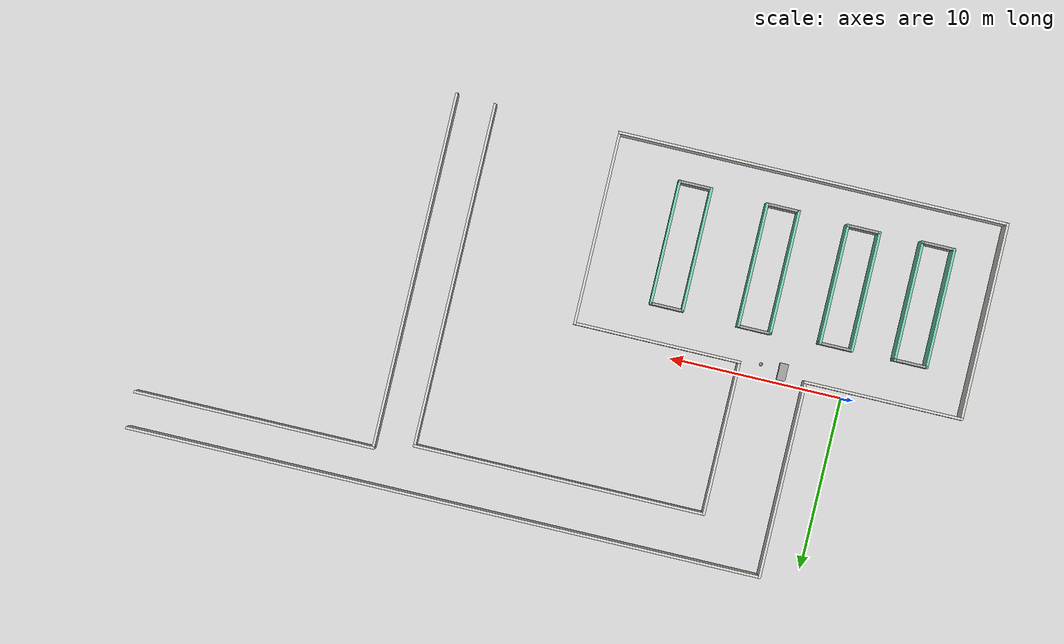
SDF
<sdf version="1.6">
 <world name="default">
  <plugin name="hello" filename="libhello.so"/>
  <light name="sun" type="directional">
   <pose>0 0 10 0 -0 0</pose>
   <diffuse>0.8 0.8 0.8 1</diffuse>
   <specular>0.2 0.2 0.2 1</specular>
   <attenuation>
    <range>1000</range>
    <constant>0.9</constant>
    <linear>0.01</linear>
    <quadratic>0.001</quadratic>
   </attenuation>
   <direction>-0.5 0.1 -0.9</direction>
   <spot><inner_angle>0</inner_angle><outer_angle>0</outer_angle><falloff>0</falloff></spot>
  </light>
  <model name="ground_plane">
   <static>1</static>
   <link name="link">
    <collision name="collision">
     <geometry><plane><normal>0 0 1</normal><size>100 100</size></plane></geometry>
     <surface>
      <contact><collide_bitmask>65535</collide_bitmask></contact>
      <friction><ode><mu>100</mu><mu2>50</mu2></ode></friction>
     </surface>
    </collision>
    <visual name="visual">
     <cast_shadows>0</cast_shadows>
     <geometry><plane><normal>0 0 1</normal><size>100 100</size></plane></geometry>
     <material>
      <script><uri>file://media/materials/scripts/gazebo.material</uri><name>Gazebo/Grey</name></script>
     </material>
    </visual>
   </link>
  </model>
  <gravity>0 0 -9.8</gravity>
  <magnetic_field>6e-06 2.3e-05 -4.2e-05</magnetic_field>
  <atmosphere type="adiabatic"/>
  <physics name="default_physics" default="0" type="ode">
   <max_step_size>0.001</max_step_size>
   <real_time_factor>1</real_time_factor>
   <real_time_update_rate>1000</real_time_update_rate>
  </physics>
  <scene><ambient>0.4 0.4 0.4 1</ambient><background>0.7 0.7 0.7 1</background><shadows>1</shadows></scene>
  <spherical_coordinates>
   <surface_model>EARTH_WGS84</surface_model>
   <latitude_deg>0</latitude_deg>
   <longitude_deg>0</longitude_deg>
   <elevation>0</elevation>
   <heading_deg>0</heading_deg>
  </spherical_coordinates>
  <model name="mybuilding">
   <pose>16.1608 -0.44654 0 0 -0 0</pose>
   <link name="Wall_0">
    <collision name="Wall_0_Collision">
     <geometry><box><size>7 0.15 2.5</size></box></geometry>
     <pose>0 0 1.25 0 -0 0</pose>
    </collision>
    <visual name="Wall_0_Visual">
     <pose>0 0 1.25 0 -0 0</pose>
     <geometry><box><size>7 0.15 2.5</size></box></geometry>
     <material>
      <script><uri>file://media/materials/scripts/gazebo.material</uri><name>Gazebo/Grey</name></script>
      <ambient>0.435294 0.796078 0.67451 1</ambient>
     </material>
     <meta><layer>0</layer></meta>
    </visual>
    <pose>-20.3708 -5.82846 0 0 -0 -1.5708</pose>
   </link>
   <link name="Wall_1">
    <collision name="Wall_1_Collision">
     <geometry><box><size>2 0.15 2.5</size></box></geometry>
     <pose>0 0 1.25 0 -0 0</pose>
    </collision>
    <visual name="Wall_1_Visual">
     <pose>0 0 1.25 0 -0 0</pose>
     <geometry><box><size>2 0.15 2.5</size></box></geometry>
     <material>
      <script><uri>file://media/materials/scripts/gazebo.material</uri><name>Gazebo/Grey</name></script>
      <ambient>1 1 1 1</ambient>
     </material>
     <meta><layer>0</layer></meta>
    </visual>
    <pose>-19.4458 -9.25346 0 0 -0 0</pose>
   </link>
   <link name="Wall_10">
    <collision name="Wall_10_Collision">
     <geometry><box><size>7.25 0.15 2.5</size></box></geometry>
     <pose>0 0 1.25 0 -0 0</pose>
    </collision>
    <visual name="Wall_10_Visual">
     <pose>0 0 1.25 0 -0 0</pose>
     <geometry><box><size>7.25 0.15 2.5</size></box></geometry>
     <material>
      <script><uri>file://media/materials/scripts/gazebo.material</uri><name>Gazebo/Grey</name></script>
      <ambient>0.435294 0.796078 0.67451 1</ambient>
     </material>
     <meta><layer>0</layer></meta>
    </visual>
    <pose>-11.3008 -5.78346 0 0 -0 -1.5708</pose>
   </link>
   <link name="Wall_11">
    <collision name="Wall_11_Collision">
     <geometry><box><size>2 0.15 2.5</size></box></geometry>
     <pose>0 0 1.25 0 -0 0</pose>
    </collision>
    <visual name="Wall_11_Visual">
     <pose>0 0 1.25 0 -0 0</pose>
     <geometry><box><size>2 0.15 2.5</size></box></geometry>
     <material>
      <script><uri>file://media/materials/scripts/gazebo.material</uri><name>Gazebo/Grey</name></script>
      <ambient>1 1 1 1</ambient>
     </material>
     <meta><layer>0</layer></meta>
    </visual>
    <pose>-10.3758 -9.33346 0 0 -0 0</pose>
   </link>
   <link name="Wall_12">
    <collision name="Wall_12_Collision">
     <geometry><box><size>7.25 0.15 2.5</size></box></geometry>
     <pose>0 0 1.25 0 -0 0</pose>
    </collision>
    <visual name="Wall_12_Visual">
     <pose>0 0 1.25 0 -0 0</pose>
     <geometry><box><size>7.25 0.15 2.5</size></box></geometry>
     <material>
      <script><uri>file://media/materials/scripts/gazebo.material</uri><name>Gazebo/Grey</name></script>
      <ambient>0.435294 0.796078 0.67451 1</ambient>
     </material>
     <meta><layer>0</layer></meta>
    </visual>
    <pose>-9.45077 -5.78346 0 0 -0 1.5708</pose>
   </link>
   <link name="Wall_13">
    <collision name="Wall_13_Collision">
     <geometry><box><size>2 0.15 2.5</size></box></geometry>
     <pose>0 0 1.25 0 -0 0</pose>
    </collision>
    <visual name="Wall_13_Visual">
     <pose>0 0 1.25 0 -0 0</pose>
     <geometry><box><size>2 0.15 2.5</size></box></geometry>
     <material>
      <script><uri>file://media/materials/scripts/gazebo.material</uri><name>Gazebo/Grey</name></script>
      <ambient>1 1 1 1</ambient>
     </material>
     <meta><layer>0</layer></meta>
    </visual>
    <pose>-10.3758 -2.23346 0 0 -0 3.14159</pose>
   </link>
   <link name="Wall_15">
    <collision name="Wall_15_Collision">
     <geometry><box><size>7.25 0.15 2.5</size></box></geometry>
     <pose>0 0 1.25 0 -0 0</pose>
    </collision>
    <visual name="Wall_15_Visual">
     <pose>0 0 1.25 0 -0 0</pose>
     <geometry><box><size>7.25 0.15 2.5</size></box></geometry>
     <material>
      <script><uri>file://media/materials/scripts/gazebo.material</uri><name>Gazebo/Grey</name></script>
      <ambient>0.435294 0.796078 0.67451 1</ambient>
     </material>
     <meta><layer>0</layer></meta>
    </visual>
    <pose>-6.16902 -5.89376 0 0 -0 -1.5708</pose>
   </link>
   <link name="Wall_16">
    <collision name="Wall_16_Collision">
     <geometry><box><size>2 0.15 2.5</size></box></geometry>
     <pose>0 0 1.25 0 -0 0</pose>
    </collision>
    <visual name="Wall_16_Visual">
     <pose>0 0 1.25 0 -0 0</pose>
     <geometry><box><size>2 0.15 2.5</size></box></geometry>
     <material>
      <script><uri>file://media/materials/scripts/gazebo.material</uri><name>Gazebo/Grey</name></script>
      <ambient>1 1 1 1</ambient>
     </material>
     <meta><layer>0</layer></meta>
    </visual>
    <pose>-5.24402 -9.44376 0 0 -0 0</pose>
   </link>
   <link name="Wall_17">
    <collision name="Wall_17_Collision">
     <geometry><box><size>7.25 0.15 2.5</size></box></geometry>
     <pose>0 0 1.25 0 -0 0</pose>
    </collision>
    <visual name="Wall_17_Visual">
     <pose>0 0 1.25 0 -0 0</pose>
     <geometry><box><size>7.25 0.15 2.5</size></box></geometry>
     <material>
      <script><uri>file://media/materials/scripts/gazebo.material</uri><name>Gazebo/Grey</name></script>
      <ambient>0.435294 0.796078 0.67451 1</ambient>
     </material>
     <meta><layer>0</layer></meta>
    </visual>
    <pose>-4.31902 -5.89376 0 0 -0 1.5708</pose>
   </link>
   <link name="Wall_18">
    <collision name="Wall_18_Collision">
     <geometry><box><size>2 0.15 2.5</size></box></geometry>
     <pose>0 0 1.25 0 -0 0</pose>
    </collision>
    <visual name="Wall_18_Visual">
     <pose>0 0 1.25 0 -0 0</pose>
     <geometry><box><size>2 0.15 2.5</size></box></geometry>
     <material>
      <script><uri>file://media/materials/scripts/gazebo.material</uri><name>Gazebo/Grey</name></script>
      <ambient>1 1 1 1</ambient>
     </material>
     <meta><layer>0</layer></meta>
    </visual>
    <pose>-5.24402 -2.34376 0 0 -0 3.14159</pose>
   </link>
   <link name="Wall_2">
    <collision name="Wall_2_Collision">
     <geometry><box><size>7 0.15 2.5</size></box></geometry>
     <pose>0 0 1.25 0 -0 0</pose>
    </collision>
    <visual name="Wall_2_Visual">
     <pose>0 0 1.25 0 -0 0</pose>
     <geometry><box><size>7 0.15 2.5</size></box></geometry>
     <material>
      <script><uri>file://media/materials/scripts/gazebo.material</uri><name>Gazebo/Grey</name></script>
      <ambient>0.435294 0.796078 0.67451 1</ambient>
     </material>
     <meta><layer>0</layer></meta>
    </visual>
    <pose>-18.5208 -5.82846 0 0 -0 1.5708</pose>
   </link>
   <link name="Wall_21">
    <collision name="Wall_21_Collision">
     <geometry><box><size>9.25 0.15 2.5</size></box></geometry>
     <pose>0 0 1.25 0 -0 0</pose>
    </collision>
    <visual name="Wall_21_Visual">
     <pose>0 0 1.25 0 -0 0</pose>
     <geometry><box><size>9.25 0.15 2.5</size></box></geometry>
     <material>
      <script><uri>file://media/materials/scripts/gazebo.material</uri><name>Gazebo/CeilingTiled</name></script>
      <ambient>1 1 1 1</ambient>
     </material>
     <meta><layer>0</layer></meta>
    </visual>
    <pose>-18.4267 -0 0 0 -0 3.14159</pose>
   </link>
   <link name="Wall_23">
    <collision name="Wall_23_Collision">
     <geometry><box><size>11.5 0.15 2.5</size></box></geometry>
     <pose>0 0 1.25 0 -0 0</pose>
    </collision>
    <visual name="Wall_23_Visual">
     <pose>0 0 1.25 0 -0 0</pose>
     <geometry><box><size>11.5 0.15 2.5</size></box></geometry>
     <material>
      <script><uri>file://media/materials/scripts/gazebo.material</uri><name>Gazebo/CeilingTiled</name></script>
      <ambient>1 1 1 1</ambient>
     </material>
     <meta><layer>0</layer></meta>
    </visual>
    <pose>-22.9767 -5.675 0 0 -0 -1.5708</pose>
   </link>
   <link name="Wall_24">
    <collision name="Wall_24_Collision">
     <geometry><box><size>22.75 0.15 2.5</size></box></geometry>
     <pose>0 0 1.25 0 -0 0</pose>
    </collision>
    <visual name="Wall_24_Visual">
     <pose>0 0 1.25 0 -0 0</pose>
     <geometry><box><size>22.75 0.15 2.5</size></box></geometry>
     <material>
      <script><uri>file://media/materials/scripts/gazebo.material</uri><name>Gazebo/CeilingTiled</name></script>
      <ambient>1 1 1 1</ambient>
     </material>
     <meta><layer>0</layer></meta>
    </visual>
    <pose>-11.6767 -11.35 0 0 -0 0</pose>
   </link>
   <link name="Wall_25">
    <collision name="Wall_25_Collision">
     <geometry><box><size>11.25 0.15 2.5</size></box></geometry>
     <pose>0 0 1.25 0 -0 0</pose>
    </collision>
    <visual name="Wall_25_Visual">
     <pose>0 0 1.25 0 -0 0</pose>
     <geometry><box><size>11.25 0.15 2.5</size></box></geometry>
     <material>
      <script><uri>file://media/materials/scripts/gazebo.material</uri><name>Gazebo/CeilingTiled</name></script>
      <ambient>1 1 1 1</ambient>
     </material>
     <meta><layer>0</layer></meta>
    </visual>
    <pose>-0.376686 -5.8 0 0 -0 1.5708</pose>
   </link>
   <link name="Wall_26">
    <collision name="Wall_26_Collision">
     <geometry><box><size>9.75 0.15 2.5</size></box></geometry>
     <pose>0 0 1.25 0 -0 0</pose>
    </collision>
    <visual name="Wall_26_Visual">
     <pose>0 0 1.25 0 -0 0</pose>
     <geometry><box><size>9.75 0.15 2.5</size></box></geometry>
     <material>
      <script><uri>file://media/materials/scripts/gazebo.material</uri><name>Gazebo/CeilingTiled</name></script>
      <ambient>1 1 1 1</ambient>
     </material>
     <meta><layer>0</layer></meta>
    </visual>
    <pose>-5.17669 -0.25 0 0 -0 3.14159</pose>
   </link>
   <link name="Wall_27">
    <collision name="Wall_27_Collision">
     <geometry><box><size>9 0.15 2.5</size></box></geometry>
     <pose>0 0 1.25 0 -0 0</pose>
    </collision>
    <visual name="Wall_27_Visual">
     <pose>0 0 1.25 0 -0 0</pose>
     <geometry><box><size>9 0.15 2.5</size></box></geometry>
     <material>
      <script><uri>file://media/materials/scripts/gazebo.material</uri><name>Gazebo/CeilingTiled</name></script>
      <ambient>1 1 1 1</ambient>
     </material>
     <meta><layer>0</layer></meta>
    </visual>
    <pose>-9.97669 4.175 0 0 -0 1.5708</pose>
   </link>
   <link name="Wall_28">
    <collision name="Wall_28_Collision">
     <geometry><box><size>17 0.15 2.5</size></box></geometry>
     <pose>0 0 1.25 0 -0 0</pose>
    </collision>
    <visual name="Wall_28_Visual">
     <pose>0 0 1.25 0 -0 0</pose>
     <geometry><box><size>17 0.15 2.5</size></box></geometry>
     <material>
      <script><uri>file://media/materials/scripts/gazebo.material</uri><name>Gazebo/CeilingTiled</name></script>
      <ambient>1 1 1 1</ambient>
     </material>
     <meta><layer>0</layer></meta>
    </visual>
    <pose>-1.55169 8.6 0 0 -0 0</pose>
   </link>
   <link name="Wall_29">
    <collision name="Wall_29_Collision">
     <geometry><box><size>20 0.15 2.5</size></box></geometry>
     <pose>0 0 1.25 0 -0 0</pose>
    </collision>
    <visual name="Wall_29_Visual">
     <pose>0 0 1.25 0 -0 0</pose>
     <geometry><box><size>20 0.15 2.5</size></box></geometry>
     <material>
      <script><uri>file://media/materials/scripts/gazebo.material</uri><name>Gazebo/CeilingTiled</name></script>
      <ambient>1 1 1 1</ambient>
     </material>
     <meta><layer>0</layer></meta>
    </visual>
    <pose>6.87331 -1.325 0 0 -0 -1.5708</pose>
   </link>
   <link name="Wall_3">
    <collision name="Wall_3_Collision">
     <geometry><box><size>2 0.15 2.5</size></box></geometry>
     <pose>0 0 1.25 0 -0 0</pose>
    </collision>
    <visual name="Wall_3_Visual">
     <pose>0 0 1.25 0 -0 0</pose>
     <geometry><box><size>2 0.15 2.5</size></box></geometry>
     <material>
      <script><uri>file://media/materials/scripts/gazebo.material</uri><name>Gazebo/Grey</name></script>
      <ambient>1 1 1 1</ambient>
     </material>
     <meta><layer>0</layer></meta>
    </visual>
    <pose>-19.4458 -2.40346 0 0 -0 3.14159</pose>
   </link>
   <link name="Wall_31">
    <collision name="Wall_31_Collision">
     <geometry><box><size>11.5 0.15 2.5</size></box></geometry>
     <pose>0 0 1.25 0 -0 0</pose>
    </collision>
    <visual name="Wall_31_Visual">
     <pose>0 0 1.25 0 -0 0</pose>
     <geometry><box><size>11.5 0.15 2.5</size></box></geometry>
     <material>
      <script><uri>file://media/materials/scripts/gazebo.material</uri><name>Gazebo/CeilingTiled</name></script>
      <ambient>1 1 1 1</ambient>
     </material>
     <meta><layer>0</layer></meta>
    </visual>
    <pose>-13.8767 5.675 0 0 -0 1.5708</pose>
   </link>
   <link name="Wall_32">
    <collision name="Wall_32_Collision">
     <geometry><box><size>37 0.15 2.5</size></box></geometry>
     <pose>0 0 1.25 0 -0 0</pose>
    </collision>
    <visual name="Wall_32_Visual">
     <pose>0 0 1.25 0 -0 0</pose>
     <geometry><box><size>37 0.15 2.5</size></box></geometry>
     <material>
      <script><uri>file://media/materials/scripts/gazebo.material</uri><name>Gazebo/CeilingTiled</name></script>
      <ambient>1 1 1 1</ambient>
     </material>
     <meta><layer>0</layer></meta>
    </visual>
    <pose>4.54831 11.35 0 0 -0 0</pose>
   </link>
   <link name="Wall_34">
    <collision name="Wall_34_Collision">
     <geometry><box><size>14 0.15 2.5</size></box></geometry>
     <pose>0 0 1.25 0 -0 0</pose>
    </collision>
    <visual name="Wall_34_Visual">
     <pose>0 0 1.25 0 -0 0</pose>
     <geometry><box><size>14 0.15 2.5</size></box></geometry>
     <material>
      <script><uri>file://media/materials/scripts/gazebo.material</uri><name>Gazebo/CeilingTiled</name></script>
      <ambient>1 1 1 1</ambient>
     </material>
     <meta><layer>0</layer></meta>
    </visual>
    <pose>16.0517 9.25434 0 0 -0 3.14159</pose>
   </link>
   <link name="Wall_35">
    <collision name="Wall_35_Collision">
     <geometry><box><size>20.75 0.15 2.5</size></box></geometry>
     <pose>0 0 1.25 0 -0 0</pose>
    </collision>
    <visual name="Wall_35_Visual">
     <pose>0 0 1.25 0 -0 0</pose>
     <geometry><box><size>20.75 0.15 2.5</size></box></geometry>
     <material>
      <script><uri>file://media/materials/scripts/gazebo.material</uri><name>Gazebo/CeilingTiled</name></script>
      <ambient>1 1 1 1</ambient>
     </material>
     <meta><layer>0</layer></meta>
    </visual>
    <pose>9.12669 -1.04566 0 0 -0 -1.5708</pose>
   </link>
   <link name="Wall_5">
    <collision name="Wall_5_Collision">
     <geometry><box><size>7 0.15 2.5</size></box></geometry>
     <pose>0 0 1.25 0 -0 0</pose>
    </collision>
    <visual name="Wall_5_Visual">
     <pose>0 0 1.25 0 -0 0</pose>
     <geometry><box><size>7 0.15 2.5</size></box></geometry>
     <material>
      <script><uri>file://media/materials/scripts/gazebo.material</uri><name>Gazebo/Grey</name></script>
      <ambient>0.435294 0.796078 0.67451 1</ambient>
     </material>
     <meta><layer>0</layer></meta>
    </visual>
    <pose>-16.0308 -5.77846 0 0 -0 -1.5708</pose>
   </link>
   <link name="Wall_6">
    <collision name="Wall_6_Collision">
     <geometry><box><size>2 0.15 2.5</size></box></geometry>
     <pose>0 0 1.25 0 -0 0</pose>
    </collision>
    <visual name="Wall_6_Visual">
     <pose>0 0 1.25 0 -0 0</pose>
     <geometry><box><size>2 0.15 2.5</size></box></geometry>
     <material>
      <script><uri>file://media/materials/scripts/gazebo.material</uri><name>Gazebo/Grey</name></script>
      <ambient>1 1 1 1</ambient>
     </material>
     <meta><layer>0</layer></meta>
    </visual>
    <pose>-15.1058 -9.20346 0 0 -0 0</pose>
   </link>
   <link name="Wall_7">
    <collision name="Wall_7_Collision">
     <geometry><box><size>7 0.15 2.5</size></box></geometry>
     <pose>0 0 1.25 0 -0 0</pose>
    </collision>
    <visual name="Wall_7_Visual">
     <pose>0 0 1.25 0 -0 0</pose>
     <geometry><box><size>7 0.15 2.5</size></box></geometry>
     <material>
      <script><uri>file://media/materials/scripts/gazebo.material</uri><name>Gazebo/Grey</name></script>
      <ambient>0.435294 0.796078 0.67451 1</ambient>
     </material>
     <meta><layer>0</layer></meta>
    </visual>
    <pose>-14.1808 -5.77846 0 0 -0 1.5708</pose>
   </link>
   <link name="Wall_8">
    <collision name="Wall_8_Collision">
     <geometry><box><size>2 0.15 2.5</size></box></geometry>
     <pose>0 0 1.25 0 -0 0</pose>
    </collision>
    <visual name="Wall_8_Visual">
     <pose>0 0 1.25 0 -0 0</pose>
     <geometry><box><size>2 0.15 2.5</size></box></geometry>
     <material>
      <script><uri>file://media/materials/scripts/gazebo.material</uri><name>Gazebo/Grey</name></script>
      <ambient>1 1 1 1</ambient>
     </material>
     <meta><layer>0</layer></meta>
    </visual>
    <pose>-15.1058 -2.35346 0 0 -0 3.14159</pose>
   </link>
   <static>1</static>
  </model>
  <model name="humanoid">
   <link name="link_0">
    <inertial>
     <mass>1</mass>
     <inertia>
      <ixx>0.166667</ixx>
      <ixy>0</ixy>
      <ixz>0</ixz>
      <iyy>0.166667</iyy>
      <iyz>0</iyz>
      <izz>0.166667</izz>
     </inertia>
    </inertial>
    <pose>0 0 0.4515 0 -0 0</pose>
    <visual name="visual">
     <geometry><box><size>0.5 1 0.25</size></box></geometry>
     <material>
      <lighting>1</lighting>
      <script><uri>file://media/materials/scripts/gazebo.material</uri><name>Gazebo/Grey</name></script>
      <shader type="pixel"><normal_map>__default__</normal_map></shader>
      <ambient>0.3 0.3 0.3 1</ambient>
      <diffuse>0.7 0.7 0.7 1</diffuse>
      <specular>0.01 0.01 0.01 1</specular>
      <emissive>0 0 0 1</emissive>
     </material>
    </visual>
    <collision name="collision">
     <geometry><box><size>0.5 1 0.25</size></box></geometry>
     <surface>
      <friction>
       <ode><mu>1</mu><mu2>1</mu2><fdir1>0 0 0</fdir1><slip1>0</slip1><slip2>0</slip2></ode>
       <torsional>
        <coefficient>1</coefficient>
        <patch_radius>0</patch_radius>
        <surface_radius>0</surface_radius>
        <use_patch_radius>1</use_patch_radius>
        <ode><slip>0</slip></ode>
       </torsional>
      </friction>
      <bounce><restitution_coefficient>0</restitution_coefficient><threshold>1e+06</threshold></bounce>
      <contact>
       <collide_without_contact>0</collide_without_contact>
       <collide_without_contact_bitmask>1</collide_without_contact_bitmask>
       <collide_bitmask>1</collide_bitmask>
       <ode>
        <soft_cfm>0</soft_cfm>
        <soft_erp>0.2</soft_erp>
        <kp>1e+13</kp>
        <kd>1</kd>
        <max_vel>0.01</max_vel>
        <min_depth>0</min_depth>
       </ode>
       <bullet>
        <split_impulse>1</split_impulse>
        <split_impulse_penetration_threshold>-0.01</split_impulse_penetration_threshold>
        <soft_cfm>0</soft_cfm>
        <soft_erp>0.2</soft_erp>
        <kp>1e+13</kp>
        <kd>1</kd>
       </bullet>
      </contact>
     </surface>
    </collision>
   </link>
   <link name="link_1">
    <inertial>
     <mass>1</mass>
     <inertia>
      <ixx>0.166667</ixx>
      <ixy>0</ixy>
      <ixz>0</ixz>
      <iyy>0.166667</iyy>
      <iyz>0</iyz>
      <izz>0.166667</izz>
     </inertia>
    </inertial>
    <pose>0 -0.3 0.2015 0 -0 0</pose>
    <visual name="visual">
     <geometry><box><size>0.05 0.1 0.5</size></box></geometry>
     <material>
      <lighting>1</lighting>
      <script><uri>file://media/materials/scripts/gazebo.material</uri><name>Gazebo/Grey</name></script>
      <shader type="pixel"><normal_map>__default__</normal_map></shader>
      <ambient>0.3 0.3 0.3 1</ambient>
      <diffuse>0.7 0.7 0.7 1</diffuse>
      <specular>0.01 0.01 0.01 1</specular>
      <emissive>0 0 0 1</emissive>
     </material>
    </visual>
    <collision name="collision">
     <geometry><box><size>0.05 0.1 0.5</size></box></geometry>
     <surface>
      <friction>
       <ode><mu>1</mu><mu2>1</mu2><fdir1>0 0 0</fdir1><slip1>0</slip1><slip2>0</slip2></ode>
       <torsional>
        <coefficient>1</coefficient>
        <patch_radius>0</patch_radius>
        <surface_radius>0</surface_radius>
        <use_patch_radius>1</use_patch_radius>
        <ode><slip>0</slip></ode>
       </torsional>
      </friction>
      <bounce><restitution_coefficient>0</restitution_coefficient><threshold>1e+06</threshold></bounce>
      <contact>
       <collide_without_contact>0</collide_without_contact>
       <collide_without_contact_bitmask>1</collide_without_contact_bitmask>
       <collide_bitmask>1</collide_bitmask>
       <ode>
        <soft_cfm>0</soft_cfm>
        <soft_erp>0.2</soft_erp>
        <kp>1e+13</kp>
        <kd>1</kd>
        <max_vel>0.01</max_vel>
        <min_depth>0</min_depth>
       </ode>
       <bullet>
        <split_impulse>1</split_impulse>
        <split_impulse_penetration_threshold>-0.01</split_impulse_penetration_threshold>
        <soft_cfm>0</soft_cfm>
        <soft_erp>0.2</soft_erp>
        <kp>1e+13</kp>
        <kd>1</kd>
       </bullet>
      </contact>
     </surface>
    </collision>
   </link>
   <link name="link_1_clone">
    <inertial>
     <mass>1</mass>
     <inertia>
      <ixx>0.166667</ixx>
      <ixy>0</ixy>
      <ixz>0</ixz>
      <iyy>0.166667</iyy>
      <iyz>0</iyz>
      <izz>0.166667</izz>
     </inertia>
    </inertial>
    <pose>0 0.3 0.2015 0 -0 0</pose>
    <visual name="visual">
     <geometry><box><size>0.05 0.1 0.5</size></box></geometry>
     <material>
      <lighting>1</lighting>
      <script><uri>file://media/materials/scripts/gazebo.material</uri><name>Gazebo/Grey</name></script>
      <shader type="pixel"><normal_map>__default__</normal_map></shader>
      <ambient>0.3 0.3 0.3 1</ambient>
      <diffuse>0.7 0.7 0.7 1</diffuse>
      <specular>0.01 0.01 0.01 1</specular>
      <emissive>0 0 0 1</emissive>
     </material>
    </visual>
    <collision name="collision">
     <geometry><box><size>0.05 0.1 0.5</size></box></geometry>
     <surface>
      <friction>
       <ode><mu>1</mu><mu2>1</mu2><fdir1>0 0 0</fdir1><slip1>0</slip1><slip2>0</slip2></ode>
       <torsional>
        <coefficient>1</coefficient>
        <patch_radius>0</patch_radius>
        <surface_radius>0</surface_radius>
        <use_patch_radius>1</use_patch_radius>
        <ode><slip>0</slip></ode>
       </torsional>
      </friction>
      <bounce><restitution_coefficient>0</restitution_coefficient><threshold>1e+06</threshold></bounce>
      <contact>
       <collide_without_contact>0</collide_without_contact>
       <collide_without_contact_bitmask>1</collide_without_contact_bitmask>
       <collide_bitmask>1</collide_bitmask>
       <ode>
        <soft_cfm>0</soft_cfm>
        <soft_erp>0.2</soft_erp>
        <kp>1e+13</kp>
        <kd>1</kd>
        <max_vel>0.01</max_vel>
        <min_depth>0</min_depth>
       </ode>
       <bullet>
        <split_impulse>1</split_impulse>
        <split_impulse_penetration_threshold>-0.01</split_impulse_penetration_threshold>
        <soft_cfm>0</soft_cfm>
        <soft_erp>0.2</soft_erp>
        <kp>1e+13</kp>
        <kd>1</kd>
       </bullet>
      </contact>
     </surface>
    </collision>
   </link>
   <link name="link_1_clone_0">
    <inertial>
     <mass>1</mass>
     <inertia>
      <ixx>0.166667</ixx>
      <ixy>0</ixy>
      <ixz>0</ixz>
      <iyy>0.166667</iyy>
      <iyz>0</iyz>
      <izz>0.166667</izz>
     </inertia>
    </inertial>
    <pose>0 -0.3 -0.2985 0 -0 0</pose>
    <visual name="visual">
     <geometry><box><size>0.05 0.1 0.5</size></box></geometry>
     <material>
      <lighting>1</lighting>
      <script><uri>file://media/materials/scripts/gazebo.material</uri><name>Gazebo/Grey</name></script>
      <shader type="pixel"><normal_map>__default__</normal_map></shader>
      <ambient>0.3 0.3 0.3 1</ambient>
      <diffuse>0.7 0.7 0.7 1</diffuse>
      <specular>0.01 0.01 0.01 1</specular>
      <emissive>0 0 0 1</emissive>
     </material>
    </visual>
    <collision name="collision">
     <geometry><box><size>0.05 0.1 0.5</size></box></geometry>
     <surface>
      <friction>
       <ode><mu>1</mu><mu2>1</mu2><fdir1>0 0 0</fdir1><slip1>0</slip1><slip2>0</slip2></ode>
       <torsional>
        <coefficient>1</coefficient>
        <patch_radius>0</patch_radius>
        <surface_radius>0</surface_radius>
        <use_patch_radius>1</use_patch_radius>
        <ode><slip>0</slip></ode>
       </torsional>
      </friction>
      <bounce><restitution_coefficient>0</restitution_coefficient><threshold>1e+06</threshold></bounce>
      <contact>
       <collide_without_contact>0</collide_without_contact>
       <collide_without_contact_bitmask>1</collide_without_contact_bitmask>
       <collide_bitmask>1</collide_bitmask>
       <ode>
        <soft_cfm>0</soft_cfm>
        <soft_erp>0.2</soft_erp>
        <kp>1e+13</kp>
        <kd>1</kd>
        <max_vel>0.01</max_vel>
        <min_depth>0</min_depth>
       </ode>
       <bullet>
        <split_impulse>1</split_impulse>
        <split_impulse_penetration_threshold>-0.01</split_impulse_penetration_threshold>
        <soft_cfm>0</soft_cfm>
        <soft_erp>0.2</soft_erp>
        <kp>1e+13</kp>
        <kd>1</kd>
       </bullet>
      </contact>
     </surface>
    </collision>
   </link>
   <link name="link_1_clone_clone">
    <inertial>
     <mass>1</mass>
     <inertia>
      <ixx>0.166667</ixx>
      <ixy>0</ixy>
      <ixz>0</ixz>
      <iyy>0.166667</iyy>
      <iyz>0</iyz>
      <izz>0.166667</izz>
     </inertia>
    </inertial>
    <pose>0 0.3 -0.2985 0 -0 0</pose>
    <visual name="visual">
     <geometry><box><size>0.05 0.1 0.5</size></box></geometry>
     <material>
      <lighting>1</lighting>
      <script><uri>file://media/materials/scripts/gazebo.material</uri><name>Gazebo/Grey</name></script>
      <shader type="pixel"><normal_map>__default__</normal_map></shader>
      <ambient>0.3 0.3 0.3 1</ambient>
      <diffuse>0.7 0.7 0.7 1</diffuse>
      <specular>0.01 0.01 0.01 1</specular>
      <emissive>0 0 0 1</emissive>
     </material>
    </visual>
    <collision name="collision">
     <geometry><box><size>0.05 0.1 0.5</size></box></geometry>
     <surface>
      <friction>
       <ode><mu>1</mu><mu2>1</mu2><fdir1>0 0 0</fdir1><slip1>0</slip1><slip2>0</slip2></ode>
       <torsional>
        <coefficient>1</coefficient>
        <patch_radius>0</patch_radius>
        <surface_radius>0</surface_radius>
        <use_patch_radius>1</use_patch_radius>
        <ode><slip>0</slip></ode>
       </torsional>
      </friction>
      <bounce><restitution_coefficient>0</restitution_coefficient><threshold>1e+06</threshold></bounce>
      <contact>
       <collide_without_contact>0</collide_without_contact>
       <collide_without_contact_bitmask>1</collide_without_contact_bitmask>
       <collide_bitmask>1</collide_bitmask>
       <ode>
        <soft_cfm>0</soft_cfm>
        <soft_erp>0.2</soft_erp>
        <kp>1e+13</kp>
        <kd>1</kd>
        <max_vel>0.01</max_vel>
        <min_depth>0</min_depth>
       </ode>
       <bullet>
        <split_impulse>1</split_impulse>
        <split_impulse_penetration_threshold>-0.01</split_impulse_penetration_threshold>
        <soft_cfm>0</soft_cfm>
        <soft_erp>0.2</soft_erp>
        <kp>1e+13</kp>
        <kd>1</kd>
       </bullet>
      </contact>
     </surface>
    </collision>
   </link>
   <joint name="link_0_JOINT_0" type="revolute">
    <parent>link_1</parent>
    <child>link_0</child>
    <pose>0 -0.3 -0.125 0 -0 0</pose>
    <axis>
     <xyz>0 1 0</xyz>
     <limit>
      <lower>-1.79769e+308</lower>
      <upper>1.79769e+308</upper>
      <effort>-1</effort>
      <velocity>-1</velocity>
     </limit>
     <dynamics>
      <spring_reference>0</spring_reference>
      <spring_stiffness>0</spring_stiffness>
      <damping>0</damping>
     </dynamics>
     <use_parent_model_frame>0</use_parent_model_frame>
    </axis>
    <physics>
     <ode><limit><cfm>0</cfm><erp>0.2</erp></limit><suspension><cfm>0</cfm><erp>0.2</erp></suspension></ode>
    </physics>
   </joint>
   <joint name="link_1_clone_0_JOINT_2" type="revolute">
    <parent>link_1_clone_0</parent>
    <child>link_1</child>
    <pose>0 0 -0.25 0 -0 0</pose>
    <axis>
     <xyz>0 1 0</xyz>
     <limit>
      <lower>-1.79769e+308</lower>
      <upper>1.79769e+308</upper>
      <effort>-1</effort>
      <velocity>-1</velocity>
     </limit>
     <dynamics>
      <spring_reference>0</spring_reference>
      <spring_stiffness>0</spring_stiffness>
      <damping>0</damping>
     </dynamics>
     <use_parent_model_frame>0</use_parent_model_frame>
    </axis>
    <physics>
     <ode><limit><cfm>0</cfm><erp>0.2</erp></limit><suspension><cfm>0</cfm><erp>0.2</erp></suspension></ode>
    </physics>
   </joint>
   <joint name="link_1_clone_JOINT_1" type="revolute">
    <parent>link_1_clone</parent>
    <child>link_0</child>
    <pose>0 0.3 -0.125 0 -0 0</pose>
    <axis>
     <xyz>0 1 0</xyz>
     <limit>
      <lower>-1.79769e+308</lower>
      <upper>1.79769e+308</upper>
      <effort>-1</effort>
      <velocity>-1</velocity>
     </limit>
     <dynamics>
      <spring_reference>0</spring_reference>
      <spring_stiffness>0</spring_stiffness>
      <damping>0</damping>
     </dynamics>
     <use_parent_model_frame>0</use_parent_model_frame>
    </axis>
    <physics>
     <ode><limit><cfm>0</cfm><erp>0.2</erp></limit><suspension><cfm>0</cfm><erp>0.2</erp></suspension></ode>
    </physics>
   </joint>
   <joint name="link_1_clone_clone_JOINT_3" type="revolute">
    <parent>link_1_clone_clone</parent>
    <child>link_1_clone</child>
    <pose>0 0 -0.25 0 -0 0</pose>
    <axis>
     <xyz>0 1 0</xyz>
     <limit>
      <lower>-1.79769e+308</lower>
      <upper>1.79769e+308</upper>
      <effort>-1</effort>
      <velocity>-1</velocity>
     </limit>
     <dynamics>
      <spring_reference>0</spring_reference>
      <spring_stiffness>0</spring_stiffness>
      <damping>0</damping>
     </dynamics>
     <use_parent_model_frame>0</use_parent_model_frame>
    </axis>
    <physics>
     <ode><limit><cfm>0</cfm><erp>0.2</erp></limit><suspension><cfm>0</cfm><erp>0.2</erp></suspension></ode>
    </physics>
   </joint>
   <static>0</static>
   <pose>3.62111 -0.727077 -0.299866 6e-06 -0.100147 -0.004467</pose>
  </model>
  <model name="my_ball">
   <link name="link_0">
    <inertial>
     <mass>1</mass>
     <inertia><ixx>0.1</ixx><ixy>0</ixy><ixz>0</ixz><iyy>0.1</iyy><iyz>0</iyz><izz>0.1</izz></inertia>
    </inertial>
    <visual name="visual">
     <geometry><sphere><radius>0.1</radius></sphere></geometry>
     <material>
      <lighting>1</lighting>
      <script><uri>file://media/materials/scripts/gazebo.material</uri><name>Gazebo/Grey</name></script>
      <shader type="pixel"><normal_map>__default__</normal_map></shader>
      <ambient>1 1 1 1</ambient>
      <diffuse>1 1 1 1</diffuse>
      <specular>1 1 1 1</specular>
      <emissive>1 1 1 1</emissive>
     </material>
    </visual>
    <collision name="collision">
     <geometry><sphere><radius>0.1</radius></sphere></geometry>
     <surface>
      <friction>
       <ode><mu>1</mu><mu2>1</mu2><fdir1>0 0 0</fdir1><slip1>0</slip1><slip2>0</slip2></ode>
       <torsional>
        <coefficient>1</coefficient>
        <patch_radius>0</patch_radius>
        <surface_radius>0</surface_radius>
        <use_patch_radius>1</use_patch_radius>
        <ode><slip>0</slip></ode>
       </torsional>
      </friction>
      <bounce><restitution_coefficient>0</restitution_coefficient><threshold>1e+06</threshold></bounce>
      <contact>
       <collide_without_contact>0</collide_without_contact>
       <collide_without_contact_bitmask>1</collide_without_contact_bitmask>
       <collide_bitmask>1</collide_bitmask>
       <ode>
        <soft_cfm>0</soft_cfm>
        <soft_erp>0.2</soft_erp>
        <kp>1e+13</kp>
        <kd>1</kd>
        <max_vel>0.01</max_vel>
        <min_depth>0</min_depth>
       </ode>
       <bullet>
        <split_impulse>1</split_impulse>
        <split_impulse_penetration_threshold>-0.01</split_impulse_penetration_threshold>
        <soft_cfm>0</soft_cfm>
        <soft_erp>0.2</soft_erp>
        <kp>1e+13</kp>
        <kd>1</kd>
       </bullet>
      </contact>
     </surface>
    </collision>
   </link>
   <static>0</static>
   <pose>4.8745 -0.870534 0.1 0 -0 0</pose>
  </model>
 </world>
</sdf>
